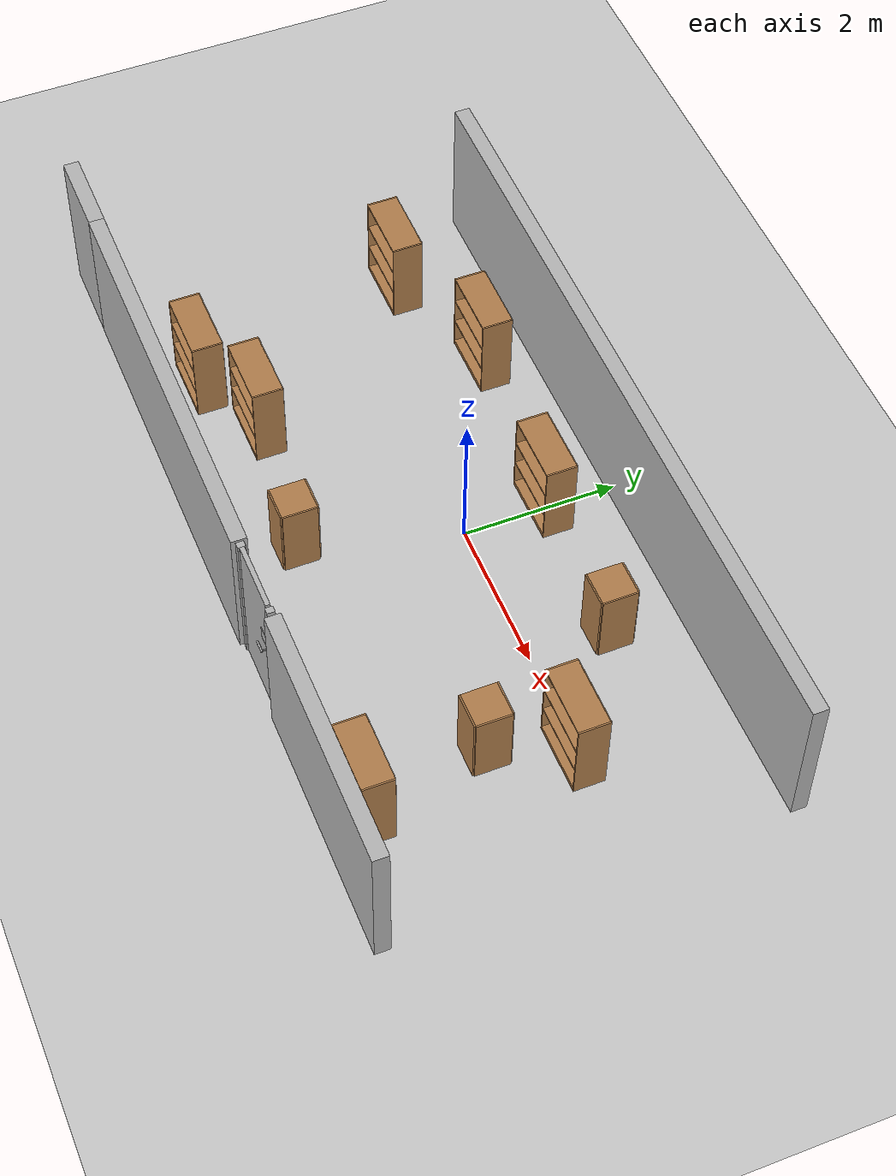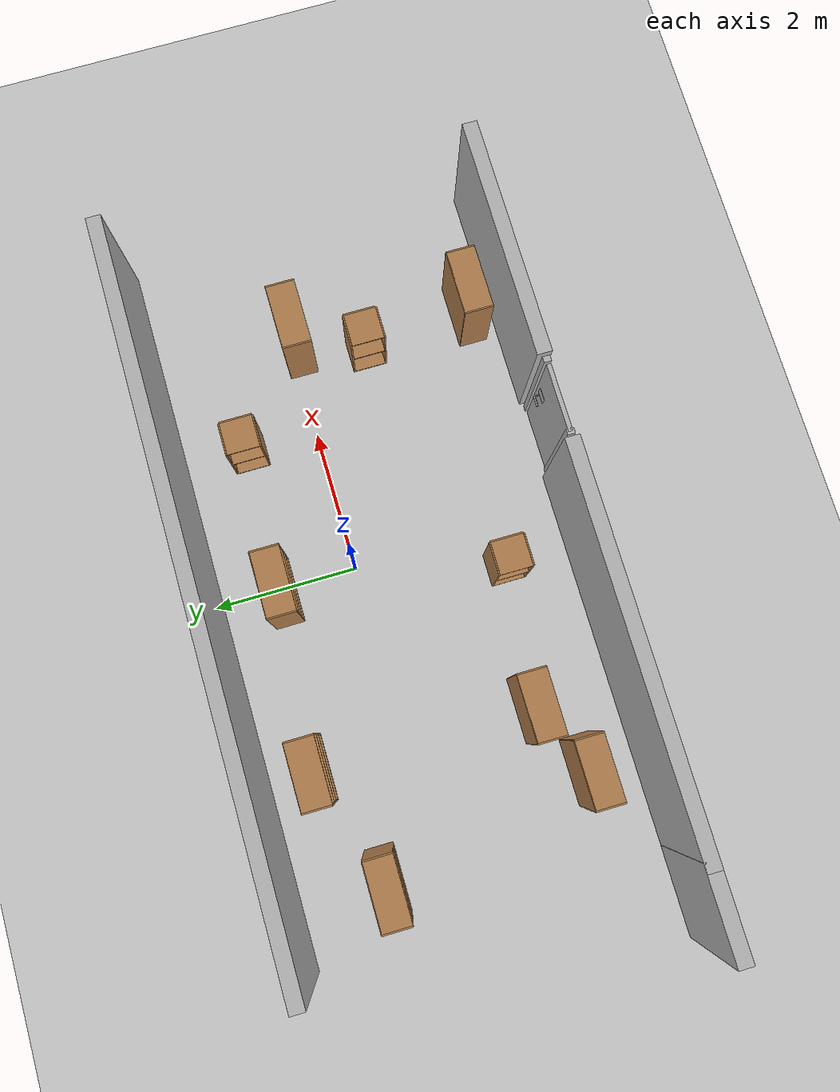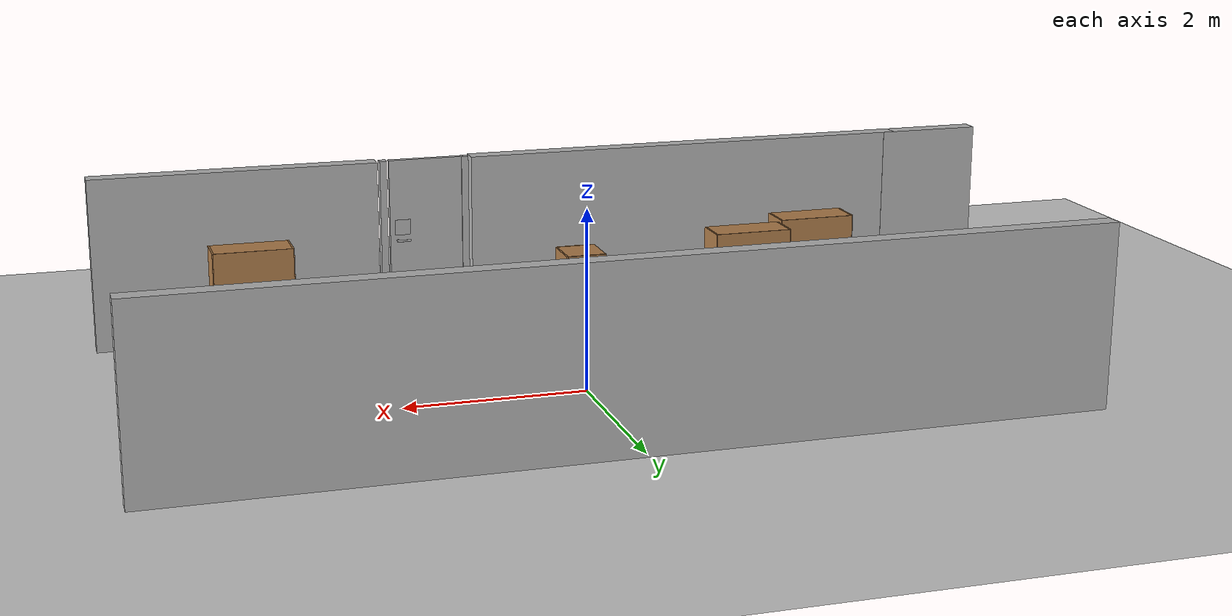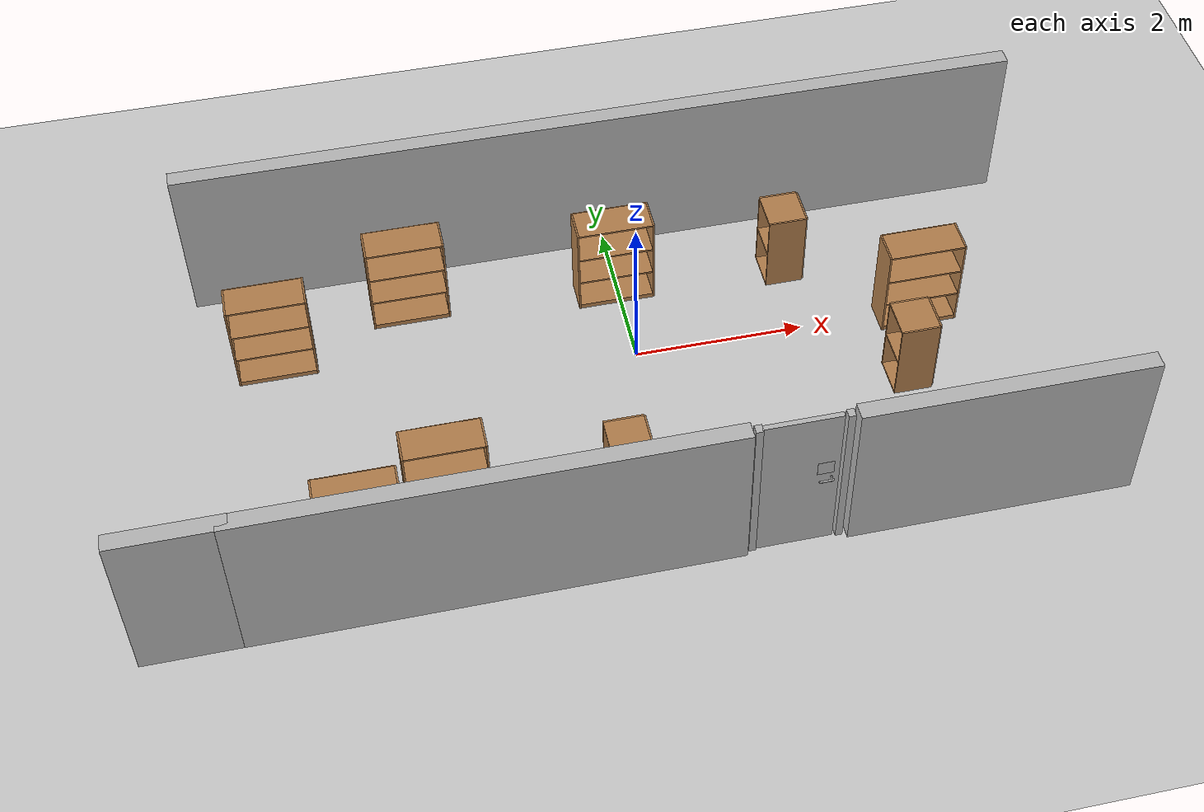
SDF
<sdf version="1.6">
 <world name="default">
  <model name="ground_plane">
   <static>1</static>
   <link name="link">
    <collision name="collision">
     <geometry><plane><normal>0 0 1</normal><size>100 100</size></plane></geometry>
     <surface><friction><ode><mu>100</mu><mu2>50</mu2></ode></friction></surface>
    </collision>
    <visual name="visual">
     <cast_shadows>0</cast_shadows>
     <geometry><plane><normal>0 0 1</normal><size>100 100</size></plane></geometry>
     <material>
      <script><uri>file://media/materials/scripts/gazebo.material</uri><name>Gazebo/Grey</name></script>
     </material>
    </visual>
    <velocity_decay><linear>0</linear><angular>0</angular></velocity_decay>
   </link>
  </model>
  <model name="wall_2_model">
   <pose>0 2 1 0 -0 0</pose>
   <static>1</static>
   <link name="wall_2_body">
    <inertial>
     <mass>1</mass>
     <inertia><ixx>1</ixx><ixy>0</ixy><ixz>0</ixz><iyy>1</iyy><iyz>0</iyz><izz>1</izz></inertia>
    </inertial>
    <collision name="collision"><geometry><box><size>10 0.2 2</size></box></geometry></collision>
    <visual name="visual"><geometry><box><size>10 0.2 2</size></box></geometry></visual>
    <velocity_decay><linear>0</linear><angular>0</angular></velocity_decay>
   </link>
  </model>
  <model name="wall_5_model">
   <pose>-2.15636 -3 1 0 -0 0</pose>
   <static>1</static>
   <link name="wall_5_body">
    <inertial>
     <mass>1</mass>
     <inertia><ixx>1</ixx><ixy>0</ixy><ixz>0</ixz><iyy>1</iyy><iyz>0</iyz><izz>1</izz></inertia>
    </inertial>
    <collision name="collision"><geometry><box><size>5.38601 0.2 2</size></box></geometry></collision>
    <visual name="visual"><geometry><box><size>5.38601 0.2 2</size></box></geometry></visual>
    <velocity_decay><linear>0</linear><angular>0</angular></velocity_decay>
   </link>
  </model>
  <model name="wall_6_model">
   <pose>3.286786 -3.0 1.0 0 0 0</pose>
   <static>1</static>
   <link name="wall_6_body">
    <inertial>
     <mass>1</mass>
     <inertia><ixx>1</ixx><ixy>0</ixy><ixz>0</ixz><iyy>1</iyy><iyz>0</iyz><izz>1</izz></inertia>
    </inertial>
    <collision name="collision"><geometry><box><size>3.27 0.2 2</size></box></geometry></collision>
    <visual name="visual"><geometry><box><size>3.27 0.2 2</size></box></geometry></visual>
    <velocity_decay><linear>0</linear><angular>0</angular></velocity_decay>
   </link>
  </model>
  <model name="cabinet">
   <static>0</static>
   <link name="cabinet_bottom_plate">
    <inertial>
     <pose>0 0 -1 0 -0 0</pose>
     <inertia><ixx>2.05</ixx><ixy>0</ixy><ixz>0</ixz><iyy>2.05</iyy><iyz>0</iyz><izz>2.05</izz></inertia>
     <mass>25</mass>
    </inertial>
    <collision name="cabinet_bottom_plate_geom">
     <pose>0 0 0.01 0 -0 0</pose>
     <geometry><box><size>0.45 0.45 0.02</size></box></geometry>
    </collision>
    <visual name="cabinet_bottom_plate_geom_visual">
     <pose>0 0 0.01 0 -0 0</pose>
     <geometry><box><size>0.45 0.45 0.02</size></box></geometry>
     <material>
      <script><uri>file://media/materials/scripts/gazebo.material</uri><name>Gazebo/Wood</name></script>
     </material>
    </visual>
    <collision name="cabinet_bottom_plate_geom_cabinet_back_plate">
     <pose>0.235 0 0.51 0 -0 0</pose>
     <geometry><box><size>0.02 0.45 1.02</size></box></geometry>
    </collision>
    <visual name="cabinet_bottom_plate_geom_cabinet_back_plate_visual">
     <pose>0.235 0 0.51 0 -0 0</pose>
     <geometry><box><size>0.02 0.45 1.02</size></box></geometry>
     <material>
      <script><uri>file://media/materials/scripts/gazebo.material</uri><name>Gazebo/Wood</name></script>
     </material>
    </visual>
    <collision name="cabinet_bottom_plate_geom_cabinet_left_plate">
     <pose>0 0.235 0.51 0 -0 0</pose>
     <geometry><box><size>0.45 0.02 1.02</size></box></geometry>
    </collision>
    <visual name="cabinet_bottom_plate_geom_cabinet_left_plate_visual">
     <pose>0 0.235 0.51 0 -0 0</pose>
     <geometry><box><size>0.45 0.02 1.02</size></box></geometry>
     <material>
      <script><uri>file://media/materials/scripts/gazebo.material</uri><name>Gazebo/Wood</name></script>
     </material>
    </visual>
    <collision name="cabinet_bottom_plate_geom_cabinet_middle_plate">
     <pose>0 0 0.51 0 -0 0</pose>
     <geometry><box><size>0.45 0.45 0.02</size></box></geometry>
    </collision>
    <visual name="cabinet_bottom_plate_geom_cabinet_middle_plate_visual">
     <pose>0 0 0.51 0 -0 0</pose>
     <geometry><box><size>0.45 0.45 0.02</size></box></geometry>
     <material>
      <script><uri>file://media/materials/scripts/gazebo.material</uri><name>Gazebo/Wood</name></script>
     </material>
    </visual>
    <collision name="cabinet_bottom_plate_geom_cabinet_right_plate">
     <pose>0 -0.235 0.51 0 -0 0</pose>
     <geometry><box><size>0.45 0.02 1.02</size></box></geometry>
    </collision>
    <visual name="cabinet_bottom_plate_geom_cabinet_right_plate_visual">
     <pose>0 -0.235 0.51 0 -0 0</pose>
     <geometry><box><size>0.45 0.02 1.02</size></box></geometry>
     <material>
      <script><uri>file://media/materials/scripts/gazebo.material</uri><name>Gazebo/Wood</name></script>
     </material>
    </visual>
    <collision name="cabinet_bottom_plate_geom_cabinet_top_plate">
     <pose>0 0 1.01 0 -0 0</pose>
     <geometry><box><size>0.45 0.45 0.02</size></box></geometry>
    </collision>
    <visual name="cabinet_bottom_plate_geom_cabinet_top_plate_visual">
     <pose>0 0 1.01 0 -0 0</pose>
     <geometry><box><size>0.45 0.45 0.02</size></box></geometry>
     <material>
      <script><uri>file://media/materials/scripts/gazebo.material</uri><name>Gazebo/Wood</name></script>
     </material>
    </visual>
    <velocity_decay><linear>0</linear><angular>0</angular></velocity_decay>
   </link>
   <pose>2 1 0 0 -0 0</pose>
  </model>
  <model name="bookshelf_0">
   <static>0</static>
   <link name="link">
    <inertial>
     <mass>1</mass>
     <inertia><ixx>1</ixx><ixy>0</ixy><ixz>0</ixz><iyy>1</iyy><iyz>0</iyz><izz>1</izz></inertia>
    </inertial>
    <collision name="back">
     <pose>0 0.005 0.6 0 -0 0</pose>
     <geometry><box><size>0.9 0.01 1.2</size></box></geometry>
    </collision>
    <visual name="visual1">
     <pose>0 0.005 0.6 0 -0 0</pose>
     <geometry><box><size>0.9 0.01 1.2</size></box></geometry>
     <material>
      <script><uri>file://media/materials/scripts/gazebo.material</uri><name>Gazebo/Wood</name></script>
     </material>
    </visual>
    <collision name="left_side">
     <pose>0.45 -0.195 0.6 0 -0 0</pose>
     <geometry><box><size>0.02 0.4 1.2</size></box></geometry>
    </collision>
    <visual name="visual2">
     <pose>0.45 -0.195 0.6 0 -0 0</pose>
     <geometry><box><size>0.02 0.4 1.2</size></box></geometry>
     <material>
      <script><uri>file://media/materials/scripts/gazebo.material</uri><name>Gazebo/Wood</name></script>
     </material>
    </visual>
    <collision name="right_side">
     <pose>-0.45 -0.195 0.6 0 -0 0</pose>
     <geometry><box><size>0.02 0.4 1.2</size></box></geometry>
    </collision>
    <visual name="visual3">
     <pose>-0.45 -0.195 0.6 0 -0 0</pose>
     <geometry><box><size>0.02 0.4 1.2</size></box></geometry>
     <material>
      <script><uri>file://media/materials/scripts/gazebo.material</uri><name>Gazebo/Wood</name></script>
     </material>
    </visual>
    <collision name="bottom">
     <pose>0 -0.195 0.03 0 -0 0</pose>
     <geometry><box><size>0.88 0.4 0.06</size></box></geometry>
    </collision>
    <visual name="visual4">
     <pose>0 -0.195 0.03 0 -0 0</pose>
     <geometry><box><size>0.88 0.4 0.06</size></box></geometry>
     <material>
      <script><uri>file://media/materials/scripts/gazebo.material</uri><name>Gazebo/Wood</name></script>
     </material>
    </visual>
    <collision name="top">
     <pose>0 -0.195 1.19 0 -0 0</pose>
     <geometry><box><size>0.88 0.4 0.02</size></box></geometry>
    </collision>
    <visual name="visual5">
     <pose>0 -0.195 1.19 0 -0 0</pose>
     <geometry><box><size>0.88 0.4 0.02</size></box></geometry>
     <material>
      <script><uri>file://media/materials/scripts/gazebo.material</uri><name>Gazebo/Wood</name></script>
     </material>
    </visual>
    <collision name="low_shelf">
     <pose>0 -0.195 0.43 0 -0 0</pose>
     <geometry><box><size>0.88 0.4 0.02</size></box></geometry>
    </collision>
    <visual name="visual6">
     <pose>0 -0.195 0.43 0 -0 0</pose>
     <geometry><box><size>0.88 0.4 0.02</size></box></geometry>
     <material>
      <script><uri>file://media/materials/scripts/gazebo.material</uri><name>Gazebo/Wood</name></script>
     </material>
    </visual>
    <collision name="high_shelf">
     <pose>0 -0.195 0.8 0 -0 0</pose>
     <geometry><box><size>0.88 0.4 0.02</size></box></geometry>
    </collision>
    <visual name="visual7">
     <pose>0 -0.195 0.8 0 -0 0</pose>
     <geometry><box><size>0.88 0.4 0.02</size></box></geometry>
     <material>
      <script><uri>file://media/materials/scripts/gazebo.material</uri><name>Gazebo/Wood</name></script>
     </material>
    </visual>
    <velocity_decay><linear>0</linear><angular>0</angular></velocity_decay>
   </link>
   <pose>-2.49657 -1.57894 0 0 -0 0</pose>
  </model>
  <model name="bookshelf_1">
   <static>0</static>
   <link name="link">
    <inertial>
     <mass>1</mass>
     <inertia><ixx>1</ixx><ixy>0</ixy><ixz>0</ixz><iyy>1</iyy><iyz>0</iyz><izz>1</izz></inertia>
    </inertial>
    <collision name="back">
     <pose>0 0.005 0.6 0 -0 0</pose>
     <geometry><box><size>0.9 0.01 1.2</size></box></geometry>
    </collision>
    <visual name="visual1">
     <pose>0 0.005 0.6 0 -0 0</pose>
     <geometry><box><size>0.9 0.01 1.2</size></box></geometry>
     <material>
      <script><uri>file://media/materials/scripts/gazebo.material</uri><name>Gazebo/Wood</name></script>
     </material>
    </visual>
    <collision name="left_side">
     <pose>0.45 -0.195 0.6 0 -0 0</pose>
     <geometry><box><size>0.02 0.4 1.2</size></box></geometry>
    </collision>
    <visual name="visual2">
     <pose>0.45 -0.195 0.6 0 -0 0</pose>
     <geometry><box><size>0.02 0.4 1.2</size></box></geometry>
     <material>
      <script><uri>file://media/materials/scripts/gazebo.material</uri><name>Gazebo/Wood</name></script>
     </material>
    </visual>
    <collision name="right_side">
     <pose>-0.45 -0.195 0.6 0 -0 0</pose>
     <geometry><box><size>0.02 0.4 1.2</size></box></geometry>
    </collision>
    <visual name="visual3">
     <pose>-0.45 -0.195 0.6 0 -0 0</pose>
     <geometry><box><size>0.02 0.4 1.2</size></box></geometry>
     <material>
      <script><uri>file://media/materials/scripts/gazebo.material</uri><name>Gazebo/Wood</name></script>
     </material>
    </visual>
    <collision name="bottom">
     <pose>0 -0.195 0.03 0 -0 0</pose>
     <geometry><box><size>0.88 0.4 0.06</size></box></geometry>
    </collision>
    <visual name="visual4">
     <pose>0 -0.195 0.03 0 -0 0</pose>
     <geometry><box><size>0.88 0.4 0.06</size></box></geometry>
     <material>
      <script><uri>file://media/materials/scripts/gazebo.material</uri><name>Gazebo/Wood</name></script>
     </material>
    </visual>
    <collision name="top">
     <pose>0 -0.195 1.19 0 -0 0</pose>
     <geometry><box><size>0.88 0.4 0.02</size></box></geometry>
    </collision>
    <visual name="visual5">
     <pose>0 -0.195 1.19 0 -0 0</pose>
     <geometry><box><size>0.88 0.4 0.02</size></box></geometry>
     <material>
      <script><uri>file://media/materials/scripts/gazebo.material</uri><name>Gazebo/Wood</name></script>
     </material>
    </visual>
    <collision name="low_shelf">
     <pose>0 -0.195 0.43 0 -0 0</pose>
     <geometry><box><size>0.88 0.4 0.02</size></box></geometry>
    </collision>
    <visual name="visual6">
     <pose>0 -0.195 0.43 0 -0 0</pose>
     <geometry><box><size>0.88 0.4 0.02</size></box></geometry>
     <material>
      <script><uri>file://media/materials/scripts/gazebo.material</uri><name>Gazebo/Wood</name></script>
     </material>
    </visual>
    <collision name="high_shelf">
     <pose>0 -0.195 0.8 0 -0 0</pose>
     <geometry><box><size>0.88 0.4 0.02</size></box></geometry>
    </collision>
    <visual name="visual7">
     <pose>0 -0.195 0.8 0 -0 0</pose>
     <geometry><box><size>0.88 0.4 0.02</size></box></geometry>
     <material>
      <script><uri>file://media/materials/scripts/gazebo.material</uri><name>Gazebo/Wood</name></script>
     </material>
    </visual>
    <velocity_decay><linear>0</linear><angular>0</angular></velocity_decay>
   </link>
   <pose>-2.49816 1.46785 0 0 -0 0</pose>
  </model>
  <model name="cabinet_3">
   <static>0</static>
   <link name="cabinet_bottom_plate">
    <inertial>
     <pose>0 0 -1 0 -0 0</pose>
     <inertia><ixx>2.05</ixx><ixy>0</ixy><ixz>0</ixz><iyy>2.05</iyy><iyz>0</iyz><izz>2.05</izz></inertia>
     <mass>25</mass>
    </inertial>
    <collision name="cabinet_bottom_plate_geom">
     <pose>0 0 0.01 0 -0 0</pose>
     <geometry><box><size>0.45 0.45 0.02</size></box></geometry>
    </collision>
    <visual name="cabinet_bottom_plate_geom_visual">
     <pose>0 0 0.01 0 -0 0</pose>
     <geometry><box><size>0.45 0.45 0.02</size></box></geometry>
     <material>
      <script><uri>file://media/materials/scripts/gazebo.material</uri><name>Gazebo/Wood</name></script>
     </material>
    </visual>
    <collision name="cabinet_bottom_plate_geom_cabinet_back_plate">
     <pose>0.235 0 0.51 0 -0 0</pose>
     <geometry><box><size>0.02 0.45 1.02</size></box></geometry>
    </collision>
    <visual name="cabinet_bottom_plate_geom_cabinet_back_plate_visual">
     <pose>0.235 0 0.51 0 -0 0</pose>
     <geometry><box><size>0.02 0.45 1.02</size></box></geometry>
     <material>
      <script><uri>file://media/materials/scripts/gazebo.material</uri><name>Gazebo/Wood</name></script>
     </material>
    </visual>
    <collision name="cabinet_bottom_plate_geom_cabinet_left_plate">
     <pose>0 0.235 0.51 0 -0 0</pose>
     <geometry><box><size>0.45 0.02 1.02</size></box></geometry>
    </collision>
    <visual name="cabinet_bottom_plate_geom_cabinet_left_plate_visual">
     <pose>0 0.235 0.51 0 -0 0</pose>
     <geometry><box><size>0.45 0.02 1.02</size></box></geometry>
     <material>
      <script><uri>file://media/materials/scripts/gazebo.material</uri><name>Gazebo/Wood</name></script>
     </material>
    </visual>
    <collision name="cabinet_bottom_plate_geom_cabinet_middle_plate">
     <pose>0 0 0.51 0 -0 0</pose>
     <geometry><box><size>0.45 0.45 0.02</size></box></geometry>
    </collision>
    <visual name="cabinet_bottom_plate_geom_cabinet_middle_plate_visual">
     <pose>0 0 0.51 0 -0 0</pose>
     <geometry><box><size>0.45 0.45 0.02</size></box></geometry>
     <material>
      <script><uri>file://media/materials/scripts/gazebo.material</uri><name>Gazebo/Wood</name></script>
     </material>
    </visual>
    <collision name="cabinet_bottom_plate_geom_cabinet_right_plate">
     <pose>0 -0.235 0.51 0 -0 0</pose>
     <geometry><box><size>0.45 0.02 1.02</size></box></geometry>
    </collision>
    <visual name="cabinet_bottom_plate_geom_cabinet_right_plate_visual">
     <pose>0 -0.235 0.51 0 -0 0</pose>
     <geometry><box><size>0.45 0.02 1.02</size></box></geometry>
     <material>
      <script><uri>file://media/materials/scripts/gazebo.material</uri><name>Gazebo/Wood</name></script>
     </material>
    </visual>
    <collision name="cabinet_bottom_plate_geom_cabinet_top_plate">
     <pose>0 0 1.01 0 -0 0</pose>
     <geometry><box><size>0.45 0.45 0.02</size></box></geometry>
    </collision>
    <visual name="cabinet_bottom_plate_geom_cabinet_top_plate_visual">
     <pose>0 0 1.01 0 -0 0</pose>
     <geometry><box><size>0.45 0.45 0.02</size></box></geometry>
     <material>
      <script><uri>file://media/materials/scripts/gazebo.material</uri><name>Gazebo/Wood</name></script>
     </material>
    </visual>
    <velocity_decay><linear>0</linear><angular>0</angular></velocity_decay>
   </link>
   <pose>3 -1 0 0 -0 0</pose>
  </model>
  <model name="cabinet_4">
   <static>0</static>
   <link name="cabinet_bottom_plate">
    <inertial>
     <pose>0 0 -1 0 -0 0</pose>
     <inertia><ixx>2.05</ixx><ixy>0</ixy><ixz>0</ixz><iyy>2.05</iyy><iyz>0</iyz><izz>2.05</izz></inertia>
     <mass>25</mass>
    </inertial>
    <collision name="cabinet_bottom_plate_geom">
     <pose>0 0 0.01 0 -0 0</pose>
     <geometry><box><size>0.45 0.45 0.02</size></box></geometry>
    </collision>
    <visual name="cabinet_bottom_plate_geom_visual">
     <pose>0 0 0.01 0 -0 0</pose>
     <geometry><box><size>0.45 0.45 0.02</size></box></geometry>
     <material>
      <script><uri>file://media/materials/scripts/gazebo.material</uri><name>Gazebo/Wood</name></script>
     </material>
    </visual>
    <collision name="cabinet_bottom_plate_geom_cabinet_back_plate">
     <pose>0.235 0 0.51 0 -0 0</pose>
     <geometry><box><size>0.02 0.45 1.02</size></box></geometry>
    </collision>
    <visual name="cabinet_bottom_plate_geom_cabinet_back_plate_visual">
     <pose>0.235 0 0.51 0 -0 0</pose>
     <geometry><box><size>0.02 0.45 1.02</size></box></geometry>
     <material>
      <script><uri>file://media/materials/scripts/gazebo.material</uri><name>Gazebo/Wood</name></script>
     </material>
    </visual>
    <collision name="cabinet_bottom_plate_geom_cabinet_left_plate">
     <pose>0 0.235 0.51 0 -0 0</pose>
     <geometry><box><size>0.45 0.02 1.02</size></box></geometry>
    </collision>
    <visual name="cabinet_bottom_plate_geom_cabinet_left_plate_visual">
     <pose>0 0.235 0.51 0 -0 0</pose>
     <geometry><box><size>0.45 0.02 1.02</size></box></geometry>
     <material>
      <script><uri>file://media/materials/scripts/gazebo.material</uri><name>Gazebo/Wood</name></script>
     </material>
    </visual>
    <collision name="cabinet_bottom_plate_geom_cabinet_middle_plate">
     <pose>0 0 0.51 0 -0 0</pose>
     <geometry><box><size>0.45 0.45 0.02</size></box></geometry>
    </collision>
    <visual name="cabinet_bottom_plate_geom_cabinet_middle_plate_visual">
     <pose>0 0 0.51 0 -0 0</pose>
     <geometry><box><size>0.45 0.45 0.02</size></box></geometry>
     <material>
      <script><uri>file://media/materials/scripts/gazebo.material</uri><name>Gazebo/Wood</name></script>
     </material>
    </visual>
    <collision name="cabinet_bottom_plate_geom_cabinet_right_plate">
     <pose>0 -0.235 0.51 0 -0 0</pose>
     <geometry><box><size>0.45 0.02 1.02</size></box></geometry>
    </collision>
    <visual name="cabinet_bottom_plate_geom_cabinet_right_plate_visual">
     <pose>0 -0.235 0.51 0 -0 0</pose>
     <geometry><box><size>0.45 0.02 1.02</size></box></geometry>
     <material>
      <script><uri>file://media/materials/scripts/gazebo.material</uri><name>Gazebo/Wood</name></script>
     </material>
    </visual>
    <collision name="cabinet_bottom_plate_geom_cabinet_top_plate">
     <pose>0 0 1.01 0 -0 0</pose>
     <geometry><box><size>0.45 0.45 0.02</size></box></geometry>
    </collision>
    <visual name="cabinet_bottom_plate_geom_cabinet_top_plate_visual">
     <pose>0 0 1.01 0 -0 0</pose>
     <geometry><box><size>0.45 0.45 0.02</size></box></geometry>
     <material>
      <script><uri>file://media/materials/scripts/gazebo.material</uri><name>Gazebo/Wood</name></script>
     </material>
    </visual>
    <velocity_decay><linear>0</linear><angular>0</angular></velocity_decay>
   </link>
   <pose>-0.537023 -2 0 0 -0 0</pose>
  </model>
  <model name="hinged_door_right">
   <static>0</static>
   <link name="frame">
    <pose>0 0 1 0 -0 0</pose>
    <visual name="frame_visual"><geometry><box><size>0.08 0.1 2</size></box></geometry></visual>
    <collision name="frame_collision"><geometry><box><size>0.08 0.1 2</size></box></geometry></collision>
    <inertial>
     <mass>20</mass>
     <inertia><ixx>1</ixx><iyy>1</iyy><izz>1</izz><ixy>0</ixy><ixz>0</ixz><iyz>0</iyz></inertia>
    </inertial>
   </link>
   <joint name="frame_to_world" type="fixed"><parent>world</parent><child>frame</child></joint>
   <link name="door_panel">
    <pose>0 0 1 0 -0 0</pose>
    <visual name="door_visual">
     <pose>0.45 0 0 0 -0 0</pose>
     <geometry><box><size>0.9 0.06 2</size></box></geometry>
    </visual>
    <collision name="door_collision">
     <pose>0.45 0 0 0 -0 0</pose>
     <geometry><box><size>0.9 0.06 2</size></box></geometry>
     <surface><friction><ode><mu>0.5</mu><mu2>0.5</mu2></ode></friction></surface>
    </collision>
    <inertial>
     <pose>0.45 0 0 0 -0 0</pose>
     <mass>20</mass>
     <inertia><ixx>2</ixx><iyy>2</iyy><izz>2</izz><ixy>0</ixy><ixz>0</ixz><iyz>0</iyz></inertia>
    </inertial>
   </link>
   <joint name="hinge" type="revolute">
    <parent>frame</parent>
    <child>door_panel</child>
    <axis>
     <xyz>0 0 1</xyz>
     <limit><lower>-1.57</lower><upper>0</upper><effort>200</effort><velocity>2</velocity></limit>
     <dynamics>
      <damping>0.05</damping>
      <friction>0</friction>
      <spring_reference>0</spring_reference>
      <spring_stiffness>0</spring_stiffness>
     </dynamics>
     <use_parent_model_frame>0</use_parent_model_frame>
    </axis>
   </joint>
   <link name="handle_front">
    <pose>0.75 0.090 1.050 0 0 0</pose>
    <collision name="handle_front_bar_collision">
     <pose>0 0 0 0 1.5707963 0</pose>
     <geometry><cylinder><radius>0.012</radius><length>0.16</length></cylinder></geometry>
    </collision>
    <collision name="handle_front_stem_collision">
     <pose>0.065 -0.030 0 1.5707963 0 0</pose>
     <geometry><cylinder><radius>0.010</radius><length>0.06</length></cylinder></geometry>
    </collision>
    <visual name="handle_front_bar_visual">
     <pose>0 0 0 0 1.5707963 0</pose>
     <geometry><cylinder><radius>0.012</radius><length>0.16</length></cylinder></geometry>
    </visual>
    <visual name="handle_front_stem_visual">
     <pose>0.065 -0.030 0 1.5707963 0 0</pose>
     <geometry><cylinder><radius>0.010</radius><length>0.06</length></cylinder></geometry>
    </visual>
    <inertial>
     <mass>0.5</mass>
     <inertia><ixx>0.001</ixx><iyy>0.001</iyy><izz>0.001</izz><ixy>0</ixy><ixz>0</ixz><iyz>0</iyz></inertia>
    </inertial>
   </link>
   <joint name="handle_front_fixed" type="fixed"><parent>door_panel</parent><child>handle_front</child></joint>
   <link name="handle_back">
    <pose>0.75 -0.090 1.050 0 0 0</pose>
    <collision name="handle_back_bar_collision">
     <pose>0 0 0 0 1.5707963 0</pose>
     <geometry><cylinder><radius>0.012</radius><length>0.16</length></cylinder></geometry>
    </collision>
    <collision name="handle_back_stem_collision">
     <pose>0.065 0.030 0 1.5707963 0 0</pose>
     <geometry><cylinder><radius>0.010</radius><length>0.06</length></cylinder></geometry>
    </collision>
    <visual name="handle_back_bar_visual">
     <pose>0 0 0 0 1.5707963 0</pose>
     <geometry><cylinder><radius>0.012</radius><length>0.16</length></cylinder></geometry>
    </visual>
    <visual name="handle_back_stem_visual">
     <pose>0.065 0.030 0 1.5707963 0 0</pose>
     <geometry><cylinder><radius>0.010</radius><length>0.06</length></cylinder></geometry>
    </visual>
    <inertial>
     <mass>0.5</mass>
     <inertia><ixx>0.001</ixx><iyy>0.001</iyy><izz>0.001</izz><ixy>0</ixy><ixz>0</ixz><iyz>0</iyz></inertia>
    </inertial>
   </link>
   <joint name="handle_back_fixed" type="fixed"><parent>door_panel</parent><child>handle_back</child></joint>
   <static>1</static>
   <link name="tag_front_model::tag_link">
    <visual name="tag_visual">
     <geometry><box><size>0.18 0.002 0.18</size></box></geometry>
     <material>
      <script>
       <uri>model://apriltag_plate_0/materials/scripts</uri>
       <uri>model://apriltag_plate_0/materials/textures</uri>
       <name>Apriltag/Tag0</name>
      </script>
     </material>
     <cast_shadows>0</cast_shadows>
    </visual>
    <collision name="tag_collision"><geometry><box><size>0.18 0.002 0.18</size></box></geometry></collision>
    <pose>0.75 0.031 1.2 3.14159 -0 3.14159</pose>
    <inertial>
     <inertia><ixx>1</ixx><ixy>0</ixy><ixz>0</ixz><iyy>1</iyy><iyz>0</iyz><izz>1</izz></inertia>
     <mass>1</mass>
    </inertial>
   </link>
   <joint name="tag_front_fixed" type="fixed">
    <parent>door_panel</parent>
    <child>tag_front_model::tag_link</child>
   </joint>
   <static>1</static>
   <link name="tag_back_model::tag_link">
    <visual name="tag_visual">
     <geometry><box><size>0.18 0.002 0.18</size></box></geometry>
     <material>
      <script>
       <uri>model://apriltag_plate_1/materials/scripts</uri>
       <uri>model://apriltag_plate_1/materials/textures</uri>
       <name>Apriltag/Tag1</name>
      </script>
     </material>
     <cast_shadows>0</cast_shadows>
    </visual>
    <collision name="tag_collision"><geometry><box><size>0.18 0.002 0.18</size></box></geometry></collision>
    <pose>0.75 -0.031 1.2 0 -0 0</pose>
    <inertial>
     <inertia><ixx>1</ixx><ixy>0</ixy><ixz>0</ixz><iyy>1</iyy><iyz>0</iyz><izz>1</izz></inertia>
     <mass>1</mass>
    </inertial>
   </link>
   <joint name="tag_back_fixed" type="fixed">
    <parent>door_panel</parent>
    <child>tag_back_model::tag_link</child>
   </joint>
   <link name="frame_far">
    <pose>0.97 0 1 0 -0 0</pose>
    <visual name="frame_far_visual"><geometry><box><size>0.08 0.1 2</size></box></geometry></visual>
    <collision name="frame_far_collision"><geometry><box><size>0.08 0.1 2</size></box></geometry></collision>
    <inertial>
     <mass>20</mass>
     <inertia><ixx>1</ixx><iyy>1</iyy><izz>1</izz><ixy>0</ixy><ixz>0</ixz><iyz>0</iyz></inertia>
    </inertial>
   </link>
   <joint name="frame_far_to_world" type="fixed"><parent>world</parent><child>frame_far</child></joint>
   <pose>0.6 -3 0 0 -0 0</pose>
  </model>
  <model name="bookshelf_0_clone_8">
   <static>0</static>
   <link name="link">
    <inertial>
     <mass>1</mass>
     <inertia><ixx>1</ixx><ixy>0</ixy><ixz>0</ixz><iyy>1</iyy><iyz>0</iyz><izz>1</izz></inertia>
    </inertial>
    <collision name="back">
     <pose>0 0.005 0.6 0 -0 0</pose>
     <geometry><box><size>0.9 0.01 1.2</size></box></geometry>
    </collision>
    <visual name="visual1">
     <pose>0 0.005 0.6 0 -0 0</pose>
     <geometry><box><size>0.9 0.01 1.2</size></box></geometry>
     <material>
      <script><uri>file://media/materials/scripts/gazebo.material</uri><name>Gazebo/Wood</name></script>
     </material>
    </visual>
    <collision name="left_side">
     <pose>0.45 -0.195 0.6 0 -0 0</pose>
     <geometry><box><size>0.02 0.4 1.2</size></box></geometry>
    </collision>
    <visual name="visual2">
     <pose>0.45 -0.195 0.6 0 -0 0</pose>
     <geometry><box><size>0.02 0.4 1.2</size></box></geometry>
     <material>
      <script><uri>file://media/materials/scripts/gazebo.material</uri><name>Gazebo/Wood</name></script>
     </material>
    </visual>
    <collision name="right_side">
     <pose>-0.45 -0.195 0.6 0 -0 0</pose>
     <geometry><box><size>0.02 0.4 1.2</size></box></geometry>
    </collision>
    <visual name="visual3">
     <pose>-0.45 -0.195 0.6 0 -0 0</pose>
     <geometry><box><size>0.02 0.4 1.2</size></box></geometry>
     <material>
      <script><uri>file://media/materials/scripts/gazebo.material</uri><name>Gazebo/Wood</name></script>
     </material>
    </visual>
    <collision name="bottom">
     <pose>0 -0.195 0.03 0 -0 0</pose>
     <geometry><box><size>0.88 0.4 0.06</size></box></geometry>
    </collision>
    <visual name="visual4">
     <pose>0 -0.195 0.03 0 -0 0</pose>
     <geometry><box><size>0.88 0.4 0.06</size></box></geometry>
     <material>
      <script><uri>file://media/materials/scripts/gazebo.material</uri><name>Gazebo/Wood</name></script>
     </material>
    </visual>
    <collision name="top">
     <pose>0 -0.195 1.19 0 -0 0</pose>
     <geometry><box><size>0.88 0.4 0.02</size></box></geometry>
    </collision>
    <visual name="visual5">
     <pose>0 -0.195 1.19 0 -0 0</pose>
     <geometry><box><size>0.88 0.4 0.02</size></box></geometry>
     <material>
      <script><uri>file://media/materials/scripts/gazebo.material</uri><name>Gazebo/Wood</name></script>
     </material>
    </visual>
    <collision name="low_shelf">
     <pose>0 -0.195 0.43 0 -0 0</pose>
     <geometry><box><size>0.88 0.4 0.02</size></box></geometry>
    </collision>
    <visual name="visual6">
     <pose>0 -0.195 0.43 0 -0 0</pose>
     <geometry><box><size>0.88 0.4 0.02</size></box></geometry>
     <material>
      <script><uri>file://media/materials/scripts/gazebo.material</uri><name>Gazebo/Wood</name></script>
     </material>
    </visual>
    <collision name="high_shelf">
     <pose>0 -0.195 0.8 0 -0 0</pose>
     <geometry><box><size>0.88 0.4 0.02</size></box></geometry>
    </collision>
    <visual name="visual7">
     <pose>0 -0.195 0.8 0 -0 0</pose>
     <geometry><box><size>0.88 0.4 0.02</size></box></geometry>
     <material>
      <script><uri>file://media/materials/scripts/gazebo.material</uri><name>Gazebo/Wood</name></script>
     </material>
    </visual>
    <velocity_decay><linear>0</linear><angular>0</angular></velocity_decay>
   </link>
   <pose>-3.47484 -2.02144 0 -3.2e-05 0 0</pose>
  </model>
  <model name="bookshelf_0_clone_9">
   <static>0</static>
   <link name="link">
    <inertial>
     <mass>1</mass>
     <inertia><ixx>1</ixx><ixy>0</ixy><ixz>0</ixz><iyy>1</iyy><iyz>0</iyz><izz>1</izz></inertia>
    </inertial>
    <collision name="back">
     <pose>0 0.005 0.6 0 -0 0</pose>
     <geometry><box><size>0.9 0.01 1.2</size></box></geometry>
    </collision>
    <visual name="visual1">
     <pose>0 0.005 0.6 0 -0 0</pose>
     <geometry><box><size>0.9 0.01 1.2</size></box></geometry>
     <material>
      <script><uri>file://media/materials/scripts/gazebo.material</uri><name>Gazebo/Wood</name></script>
     </material>
    </visual>
    <collision name="left_side">
     <pose>0.45 -0.195 0.6 0 -0 0</pose>
     <geometry><box><size>0.02 0.4 1.2</size></box></geometry>
    </collision>
    <visual name="visual2">
     <pose>0.45 -0.195 0.6 0 -0 0</pose>
     <geometry><box><size>0.02 0.4 1.2</size></box></geometry>
     <material>
      <script><uri>file://media/materials/scripts/gazebo.material</uri><name>Gazebo/Wood</name></script>
     </material>
    </visual>
    <collision name="right_side">
     <pose>-0.45 -0.195 0.6 0 -0 0</pose>
     <geometry><box><size>0.02 0.4 1.2</size></box></geometry>
    </collision>
    <visual name="visual3">
     <pose>-0.45 -0.195 0.6 0 -0 0</pose>
     <geometry><box><size>0.02 0.4 1.2</size></box></geometry>
     <material>
      <script><uri>file://media/materials/scripts/gazebo.material</uri><name>Gazebo/Wood</name></script>
     </material>
    </visual>
    <collision name="bottom">
     <pose>0 -0.195 0.03 0 -0 0</pose>
     <geometry><box><size>0.88 0.4 0.06</size></box></geometry>
    </collision>
    <visual name="visual4">
     <pose>0 -0.195 0.03 0 -0 0</pose>
     <geometry><box><size>0.88 0.4 0.06</size></box></geometry>
     <material>
      <script><uri>file://media/materials/scripts/gazebo.material</uri><name>Gazebo/Wood</name></script>
     </material>
    </visual>
    <collision name="top">
     <pose>0 -0.195 1.19 0 -0 0</pose>
     <geometry><box><size>0.88 0.4 0.02</size></box></geometry>
    </collision>
    <visual name="visual5">
     <pose>0 -0.195 1.19 0 -0 0</pose>
     <geometry><box><size>0.88 0.4 0.02</size></box></geometry>
     <material>
      <script><uri>file://media/materials/scripts/gazebo.material</uri><name>Gazebo/Wood</name></script>
     </material>
    </visual>
    <collision name="low_shelf">
     <pose>0 -0.195 0.43 0 -0 0</pose>
     <geometry><box><size>0.88 0.4 0.02</size></box></geometry>
    </collision>
    <visual name="visual6">
     <pose>0 -0.195 0.43 0 -0 0</pose>
     <geometry><box><size>0.88 0.4 0.02</size></box></geometry>
     <material>
      <script><uri>file://media/materials/scripts/gazebo.material</uri><name>Gazebo/Wood</name></script>
     </material>
    </visual>
    <collision name="high_shelf">
     <pose>0 -0.195 0.8 0 -0 0</pose>
     <geometry><box><size>0.88 0.4 0.02</size></box></geometry>
    </collision>
    <visual name="visual7">
     <pose>0 -0.195 0.8 0 -0 0</pose>
     <geometry><box><size>0.88 0.4 0.02</size></box></geometry>
     <material>
      <script><uri>file://media/materials/scripts/gazebo.material</uri><name>Gazebo/Wood</name></script>
     </material>
    </visual>
    <velocity_decay><linear>0</linear><angular>0</angular></velocity_decay>
   </link>
   <pose>3.18233 -2.34002 0 -3.2e-05 0 0</pose>
  </model>
  <model name="bookshelf_0_clone_10">
   <static>0</static>
   <link name="link">
    <inertial>
     <mass>1</mass>
     <inertia><ixx>1</ixx><ixy>0</ixy><ixz>0</ixz><iyy>1</iyy><iyz>0</iyz><izz>1</izz></inertia>
    </inertial>
    <collision name="back">
     <pose>0 0.005 0.6 0 -0 0</pose>
     <geometry><box><size>0.9 0.01 1.2</size></box></geometry>
    </collision>
    <visual name="visual1">
     <pose>0 0.005 0.6 0 -0 0</pose>
     <geometry><box><size>0.9 0.01 1.2</size></box></geometry>
     <material>
      <script><uri>file://media/materials/scripts/gazebo.material</uri><name>Gazebo/Wood</name></script>
     </material>
    </visual>
    <collision name="left_side">
     <pose>0.45 -0.195 0.6 0 -0 0</pose>
     <geometry><box><size>0.02 0.4 1.2</size></box></geometry>
    </collision>
    <visual name="visual2">
     <pose>0.45 -0.195 0.6 0 -0 0</pose>
     <geometry><box><size>0.02 0.4 1.2</size></box></geometry>
     <material>
      <script><uri>file://media/materials/scripts/gazebo.material</uri><name>Gazebo/Wood</name></script>
     </material>
    </visual>
    <collision name="right_side">
     <pose>-0.45 -0.195 0.6 0 -0 0</pose>
     <geometry><box><size>0.02 0.4 1.2</size></box></geometry>
    </collision>
    <visual name="visual3">
     <pose>-0.45 -0.195 0.6 0 -0 0</pose>
     <geometry><box><size>0.02 0.4 1.2</size></box></geometry>
     <material>
      <script><uri>file://media/materials/scripts/gazebo.material</uri><name>Gazebo/Wood</name></script>
     </material>
    </visual>
    <collision name="bottom">
     <pose>0 -0.195 0.03 0 -0 0</pose>
     <geometry><box><size>0.88 0.4 0.06</size></box></geometry>
    </collision>
    <visual name="visual4">
     <pose>0 -0.195 0.03 0 -0 0</pose>
     <geometry><box><size>0.88 0.4 0.06</size></box></geometry>
     <material>
      <script><uri>file://media/materials/scripts/gazebo.material</uri><name>Gazebo/Wood</name></script>
     </material>
    </visual>
    <collision name="top">
     <pose>0 -0.195 1.19 0 -0 0</pose>
     <geometry><box><size>0.88 0.4 0.02</size></box></geometry>
    </collision>
    <visual name="visual5">
     <pose>0 -0.195 1.19 0 -0 0</pose>
     <geometry><box><size>0.88 0.4 0.02</size></box></geometry>
     <material>
      <script><uri>file://media/materials/scripts/gazebo.material</uri><name>Gazebo/Wood</name></script>
     </material>
    </visual>
    <collision name="low_shelf">
     <pose>0 -0.195 0.43 0 -0 0</pose>
     <geometry><box><size>0.88 0.4 0.02</size></box></geometry>
    </collision>
    <visual name="visual6">
     <pose>0 -0.195 0.43 0 -0 0</pose>
     <geometry><box><size>0.88 0.4 0.02</size></box></geometry>
     <material>
      <script><uri>file://media/materials/scripts/gazebo.material</uri><name>Gazebo/Wood</name></script>
     </material>
    </visual>
    <collision name="high_shelf">
     <pose>0 -0.195 0.8 0 -0 0</pose>
     <geometry><box><size>0.88 0.4 0.02</size></box></geometry>
    </collision>
    <visual name="visual7">
     <pose>0 -0.195 0.8 0 -0 0</pose>
     <geometry><box><size>0.88 0.4 0.02</size></box></geometry>
     <material>
      <script><uri>file://media/materials/scripts/gazebo.material</uri><name>Gazebo/Wood</name></script>
     </material>
    </visual>
    <velocity_decay><linear>0</linear><angular>0</angular></velocity_decay>
   </link>
   <pose>3.38551 0.131355 0 -3.2e-05 0 0</pose>
  </model>
  <model name="bookshelf_0_clone_11">
   <static>0</static>
   <link name="link">
    <inertial>
     <mass>1</mass>
     <inertia><ixx>1</ixx><ixy>0</ixy><ixz>0</ixz><iyy>1</iyy><iyz>0</iyz><izz>1</izz></inertia>
    </inertial>
    <collision name="back">
     <pose>0 0.005 0.6 0 -0 0</pose>
     <geometry><box><size>0.9 0.01 1.2</size></box></geometry>
    </collision>
    <visual name="visual1">
     <pose>0 0.005 0.6 0 -0 0</pose>
     <geometry><box><size>0.9 0.01 1.2</size></box></geometry>
     <material>
      <script><uri>file://media/materials/scripts/gazebo.material</uri><name>Gazebo/Wood</name></script>
     </material>
    </visual>
    <collision name="left_side">
     <pose>0.45 -0.195 0.6 0 -0 0</pose>
     <geometry><box><size>0.02 0.4 1.2</size></box></geometry>
    </collision>
    <visual name="visual2">
     <pose>0.45 -0.195 0.6 0 -0 0</pose>
     <geometry><box><size>0.02 0.4 1.2</size></box></geometry>
     <material>
      <script><uri>file://media/materials/scripts/gazebo.material</uri><name>Gazebo/Wood</name></script>
     </material>
    </visual>
    <collision name="right_side">
     <pose>-0.45 -0.195 0.6 0 -0 0</pose>
     <geometry><box><size>0.02 0.4 1.2</size></box></geometry>
    </collision>
    <visual name="visual3">
     <pose>-0.45 -0.195 0.6 0 -0 0</pose>
     <geometry><box><size>0.02 0.4 1.2</size></box></geometry>
     <material>
      <script><uri>file://media/materials/scripts/gazebo.material</uri><name>Gazebo/Wood</name></script>
     </material>
    </visual>
    <collision name="bottom">
     <pose>0 -0.195 0.03 0 -0 0</pose>
     <geometry><box><size>0.88 0.4 0.06</size></box></geometry>
    </collision>
    <visual name="visual4">
     <pose>0 -0.195 0.03 0 -0 0</pose>
     <geometry><box><size>0.88 0.4 0.06</size></box></geometry>
     <material>
      <script><uri>file://media/materials/scripts/gazebo.material</uri><name>Gazebo/Wood</name></script>
     </material>
    </visual>
    <collision name="top">
     <pose>0 -0.195 1.19 0 -0 0</pose>
     <geometry><box><size>0.88 0.4 0.02</size></box></geometry>
    </collision>
    <visual name="visual5">
     <pose>0 -0.195 1.19 0 -0 0</pose>
     <geometry><box><size>0.88 0.4 0.02</size></box></geometry>
     <material>
      <script><uri>file://media/materials/scripts/gazebo.material</uri><name>Gazebo/Wood</name></script>
     </material>
    </visual>
    <collision name="low_shelf">
     <pose>0 -0.195 0.43 0 -0 0</pose>
     <geometry><box><size>0.88 0.4 0.02</size></box></geometry>
    </collision>
    <visual name="visual6">
     <pose>0 -0.195 0.43 0 -0 0</pose>
     <geometry><box><size>0.88 0.4 0.02</size></box></geometry>
     <material>
      <script><uri>file://media/materials/scripts/gazebo.material</uri><name>Gazebo/Wood</name></script>
     </material>
    </visual>
    <collision name="high_shelf">
     <pose>0 -0.195 0.8 0 -0 0</pose>
     <geometry><box><size>0.88 0.4 0.02</size></box></geometry>
    </collision>
    <visual name="visual7">
     <pose>0 -0.195 0.8 0 -0 0</pose>
     <geometry><box><size>0.88 0.4 0.02</size></box></geometry>
     <material>
      <script><uri>file://media/materials/scripts/gazebo.material</uri><name>Gazebo/Wood</name></script>
     </material>
    </visual>
    <velocity_decay><linear>0</linear><angular>0</angular></velocity_decay>
   </link>
   <pose>-0.05023 1.26319 0 -3.2e-05 0 0</pose>
  </model>
  <model name="bookshelf_0_clone_12">
   <static>0</static>
   <link name="link">
    <inertial>
     <mass>1</mass>
     <inertia><ixx>1</ixx><ixy>0</ixy><ixz>0</ixz><iyy>1</iyy><iyz>0</iyz><izz>1</izz></inertia>
    </inertial>
    <collision name="back">
     <pose>0 0.005 0.6 0 -0 0</pose>
     <geometry><box><size>0.9 0.01 1.2</size></box></geometry>
    </collision>
    <visual name="visual1">
     <pose>0 0.005 0.6 0 -0 0</pose>
     <geometry><box><size>0.9 0.01 1.2</size></box></geometry>
     <material>
      <script><uri>file://media/materials/scripts/gazebo.material</uri><name>Gazebo/Wood</name></script>
     </material>
    </visual>
    <collision name="left_side">
     <pose>0.45 -0.195 0.6 0 -0 0</pose>
     <geometry><box><size>0.02 0.4 1.2</size></box></geometry>
    </collision>
    <visual name="visual2">
     <pose>0.45 -0.195 0.6 0 -0 0</pose>
     <geometry><box><size>0.02 0.4 1.2</size></box></geometry>
     <material>
      <script><uri>file://media/materials/scripts/gazebo.material</uri><name>Gazebo/Wood</name></script>
     </material>
    </visual>
    <collision name="right_side">
     <pose>-0.45 -0.195 0.6 0 -0 0</pose>
     <geometry><box><size>0.02 0.4 1.2</size></box></geometry>
    </collision>
    <visual name="visual3">
     <pose>-0.45 -0.195 0.6 0 -0 0</pose>
     <geometry><box><size>0.02 0.4 1.2</size></box></geometry>
     <material>
      <script><uri>file://media/materials/scripts/gazebo.material</uri><name>Gazebo/Wood</name></script>
     </material>
    </visual>
    <collision name="bottom">
     <pose>0 -0.195 0.03 0 -0 0</pose>
     <geometry><box><size>0.88 0.4 0.06</size></box></geometry>
    </collision>
    <visual name="visual4">
     <pose>0 -0.195 0.03 0 -0 0</pose>
     <geometry><box><size>0.88 0.4 0.06</size></box></geometry>
     <material>
      <script><uri>file://media/materials/scripts/gazebo.material</uri><name>Gazebo/Wood</name></script>
     </material>
    </visual>
    <collision name="top">
     <pose>0 -0.195 1.19 0 -0 0</pose>
     <geometry><box><size>0.88 0.4 0.02</size></box></geometry>
    </collision>
    <visual name="visual5">
     <pose>0 -0.195 1.19 0 -0 0</pose>
     <geometry><box><size>0.88 0.4 0.02</size></box></geometry>
     <material>
      <script><uri>file://media/materials/scripts/gazebo.material</uri><name>Gazebo/Wood</name></script>
     </material>
    </visual>
    <collision name="low_shelf">
     <pose>0 -0.195 0.43 0 -0 0</pose>
     <geometry><box><size>0.88 0.4 0.02</size></box></geometry>
    </collision>
    <visual name="visual6">
     <pose>0 -0.195 0.43 0 -0 0</pose>
     <geometry><box><size>0.88 0.4 0.02</size></box></geometry>
     <material>
      <script><uri>file://media/materials/scripts/gazebo.material</uri><name>Gazebo/Wood</name></script>
     </material>
    </visual>
    <collision name="high_shelf">
     <pose>0 -0.195 0.8 0 -0 0</pose>
     <geometry><box><size>0.88 0.4 0.02</size></box></geometry>
    </collision>
    <visual name="visual7">
     <pose>0 -0.195 0.8 0 -0 0</pose>
     <geometry><box><size>0.88 0.4 0.02</size></box></geometry>
     <material>
      <script><uri>file://media/materials/scripts/gazebo.material</uri><name>Gazebo/Wood</name></script>
     </material>
    </visual>
    <velocity_decay><linear>0</linear><angular>0</angular></velocity_decay>
   </link>
   <pose>-4.14125 0.912956 0 -3.2e-05 0 0</pose>
  </model>
  <model name="wall_6_model_clone_clone">
   <pose>-5.32512 -2.99725 1 0 -0 0</pose>
   <static>1</static>
   <link name="wall_6_body">
    <inertial>
     <mass>1</mass>
     <inertia><ixx>1</ixx><ixy>0</ixy><ixz>0</ixz><iyy>1</iyy><iyz>0</iyz><izz>1</izz></inertia>
    </inertial>
    <collision name="collision"><geometry><box><size>1.22349 0.2 2</size></box></geometry></collision>
    <visual name="visual"><geometry><box><size>1.22349 0.2 2</size></box></geometry></visual>
    <velocity_decay><linear>0</linear><angular>0</angular></velocity_decay>
   </link>
  </model>
 </world>
</sdf>
